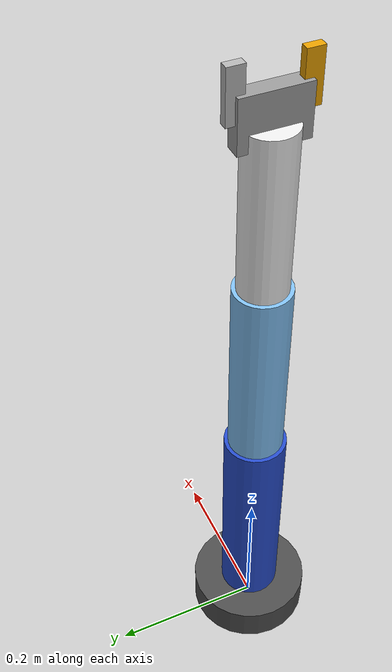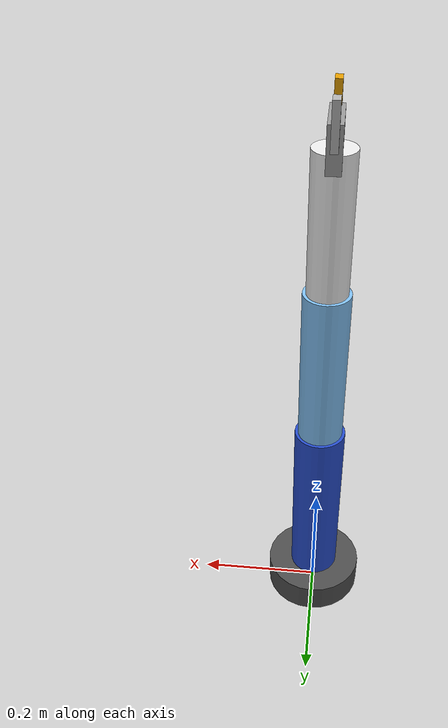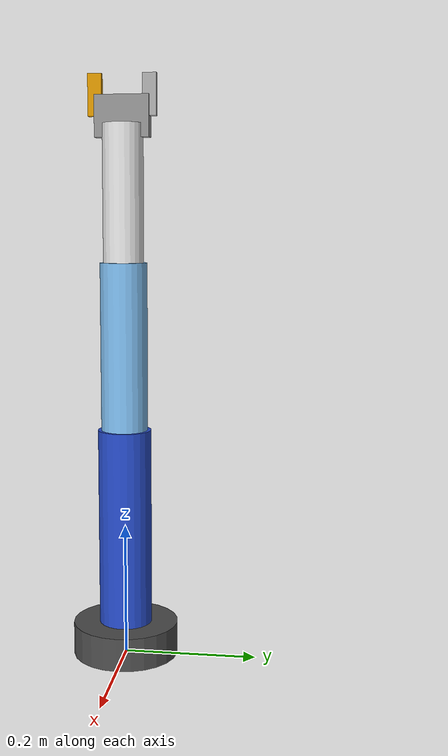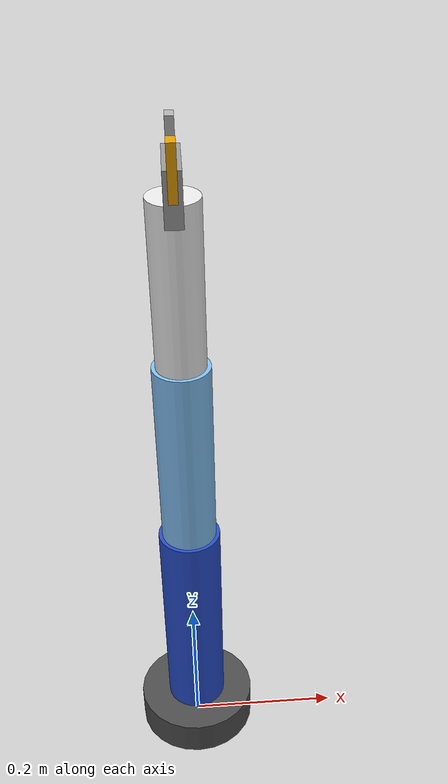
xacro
<?xml version="1.0"?>
<robot xmlns:xacro="http://www.ros.org/wiki/xacro" name="pick_place_arm">

  <!-- ================= PARAMETERS ================= -->
  <xacro:property name="base_height" value="0.05"/>
  <xacro:property name="base_radius" value="0.08"/>
  <xacro:property name="link1_length" value="0.30"/>
  <xacro:property name="link1_radius" value="0.04"/>
  <xacro:property name="link2_length" value="0.25"/>
  <xacro:property name="link2_radius" value="0.035"/>
  <xacro:property name="link3_length" value="0.20"/>
  <xacro:property name="link3_radius" value="0.03"/>
  <xacro:property name="gripper_width" value="0.08"/>
  <xacro:property name="finger_length" value="0.06"/>
  <xacro:property name="finger_width" value="0.01"/>

  <!-- ================= INERTIA MACROS ================= -->
  <xacro:macro name="cylinder_inertia" params="mass length radius">
    <inertial>
      <origin xyz="0 0 ${length/2}"/>
      <mass value="${mass}"/>
      <inertia ixx="${(1.0/12.0)*mass*(3*radius*radius + length*length)}"
               iyy="${(1.0/12.0)*mass*(3*radius*radius + length*length)}"
               izz="${0.5*mass*radius*radius}"
               ixy="0" ixz="0" iyz="0"/>
    </inertial>
  </xacro:macro>

  <xacro:macro name="box_inertia" params="mass x y z">
    <inertial>
      <mass value="${mass}"/>
      <inertia ixx="${(1.0/12.0)*mass*(y*y + z*z)}"
               iyy="${(1.0/12.0)*mass*(x*x + z*z)}"
               izz="${(1.0/12.0)*mass*(x*x + y*y)}"
               ixy="0" ixz="0" iyz="0"/>
    </inertial>
  </xacro:macro>

  <!-- ================= WORLD ================= -->
  <link name="world"/>
  <joint name="world_to_base" type="fixed">
    <parent link="world"/>
    <child link="base_link"/>
    <origin xyz="0 0 ${base_height/2}"/>
  </joint>

  <!-- ================= BASE ================= -->
  <link name="base_link">
    <visual><geometry><cylinder radius="${base_radius}" length="${base_height}"/></geometry></visual>
    <collision><geometry><cylinder radius="${base_radius}" length="${base_height}"/></geometry></collision>
    <xacro:cylinder_inertia mass="2.0" length="${base_height}" radius="${base_radius}"/>
  </link>

  <!-- ================= ARM ================= -->
  <joint name="shoulder_pan_joint" type="revolute">
    <parent link="base_link"/>
    <child link="link1"/>
    <origin xyz="0 0 ${base_height/2}"/>
    <axis xyz="0 0 1"/>
    <limit lower="${-pi}" upper="${pi}" effort="100.0" velocity="2.0"/>
    <dynamics damping="3.0"/>
  </joint>

  <link name="link1">
    <visual><origin xyz="0 0 ${link1_length/2}"/><geometry><cylinder radius="${link1_radius}" length="${link1_length}"/></geometry></visual>
    <collision><origin xyz="0 0 ${link1_length/2}"/><geometry><cylinder radius="${link1_radius}" length="${link1_length}"/></geometry></collision>
    <xacro:cylinder_inertia mass="1.5" length="${link1_length}" radius="${link1_radius}"/>
  </link>

  <joint name="shoulder_lift_joint" type="revolute">
    <parent link="link1"/>
    <child link="link2"/>
    <origin xyz="0 0 ${link1_length}"/>
    <axis xyz="0 1 0"/>
    <limit lower="${-pi/2}" upper="${pi/2}" effort="100.0" velocity="2.0"/>
    <dynamics damping="5.0"/>
  </joint>

  <link name="link2">
    <visual><origin xyz="0 0 ${link2_length/2}"/><geometry><cylinder radius="${link2_radius}" length="${link2_length}"/></geometry></visual>
    <collision><origin xyz="0 0 ${link2_length/2}"/><geometry><cylinder radius="${link2_radius}" length="${link2_length}"/></geometry></collision>
    <xacro:cylinder_inertia mass="1.0" length="${link2_length}" radius="${link2_radius}"/>
  </link>

  <joint name="elbow_joint" type="revolute">
    <parent link="link2"/>
    <child link="link3"/>
    <origin xyz="0 0 ${link2_length}"/>
    <axis xyz="0 1 0"/>
    <limit lower="${-2*pi/3}" upper="${2*pi/3}" effort="100.0" velocity="2.0"/>
    <dynamics damping="3.0"/>
  </joint>

  <link name="link3">
    <visual><origin xyz="0 0 ${link3_length/2}"/><geometry><cylinder radius="${link3_radius}" length="${link3_length}"/></geometry></visual>
    <collision><origin xyz="0 0 ${link3_length/2}"/><geometry><cylinder radius="${link3_radius}" length="${link3_length}"/></geometry></collision>
    <xacro:cylinder_inertia mass="0.8" length="${link3_length}" radius="${link3_radius}"/>
  </link>

  <!-- ================= EE ================= -->
  <joint name="ee_fixed_joint" type="fixed">
    <parent link="link3"/>
    <child link="ee_link"/>
    <origin xyz="0 0 ${link3_length}"/>
  </joint>

  <link name="ee_link">
    <visual><geometry><sphere radius="0.01"/></geometry></visual>
  </link>

  <!-- ================= GRIPPER (FIXED) ================= -->
  <joint name="palm_joint" type="fixed">
    <parent link="ee_link"/>
    <child link="gripper_palm"/>
    <origin xyz="0 0 0.01" rpy="0 -1.5708 0"/>
  </joint>

  <link name="gripper_palm">
    <visual><geometry><box size="0.06 ${gripper_width} 0.02"/></geometry></visual>
    <collision><geometry><box size="0.06 ${gripper_width} 0.02"/></geometry></collision>
    <xacro:box_inertia mass="0.3" x="0.06" y="${gripper_width}" z="0.02"/>
  </link>

  <!-- LEFT -->
  <joint name="left_finger_joint" type="prismatic">
    <origin xyz="0 ${gripper_width/2} 0"/>
    <axis xyz="0 -1 0"/>
    <parent link="gripper_palm"/>
    <child link="left_finger"/>
    <limit lower="0.0" upper="0.04" effort="50" velocity="0.5"/>
    <dynamics damping="2.0"/>
  </joint>

  <link name="left_finger">
    <visual><origin xyz="${finger_length/2} 0 0"/><geometry><box size="${finger_length} 0.02 ${finger_width}"/></geometry></visual>
    <collision><origin xyz="${finger_length/2} 0 0"/><geometry><box size="${finger_length} 0.02 ${finger_width}"/></geometry></collision>
    <xacro:box_inertia mass="0.1" x="${finger_length}" y="0.02" z="${finger_width}"/>
  </link>

  <!-- RIGHT -->
  <joint name="right_finger_joint" type="prismatic">
    <origin xyz="0 ${-gripper_width/2} 0"/>
    <axis xyz="0 1 0"/>
    <parent link="gripper_palm"/>
    <child link="right_finger"/>
    <mimic joint="left_finger_joint"/>
    <limit lower="0.0" upper="0.04" effort="50" velocity="0.5"/>
    <dynamics damping="2.0"/>
  </joint>

  <link name="right_finger">
    <visual><origin xyz="${finger_length/2} 0 0"/><geometry><box size="${finger_length} 0.02 ${finger_width}"/></geometry></visual>
    <collision><origin xyz="${finger_length/2} 0 0"/><geometry><box size="${finger_length} 0.02 ${finger_width}"/></geometry></collision>
    <xacro:box_inertia mass="0.1" x="${finger_length}" y="0.02" z="${finger_width}"/>
  </link>

  <xacro:include filename="$(find pick_and_place)/urdf/arm.gazebo.xacro"/>
  <xacro:include filename="$(find pick_and_place)/urdf/arm.ros2_control.xacro"/>

</robot>
